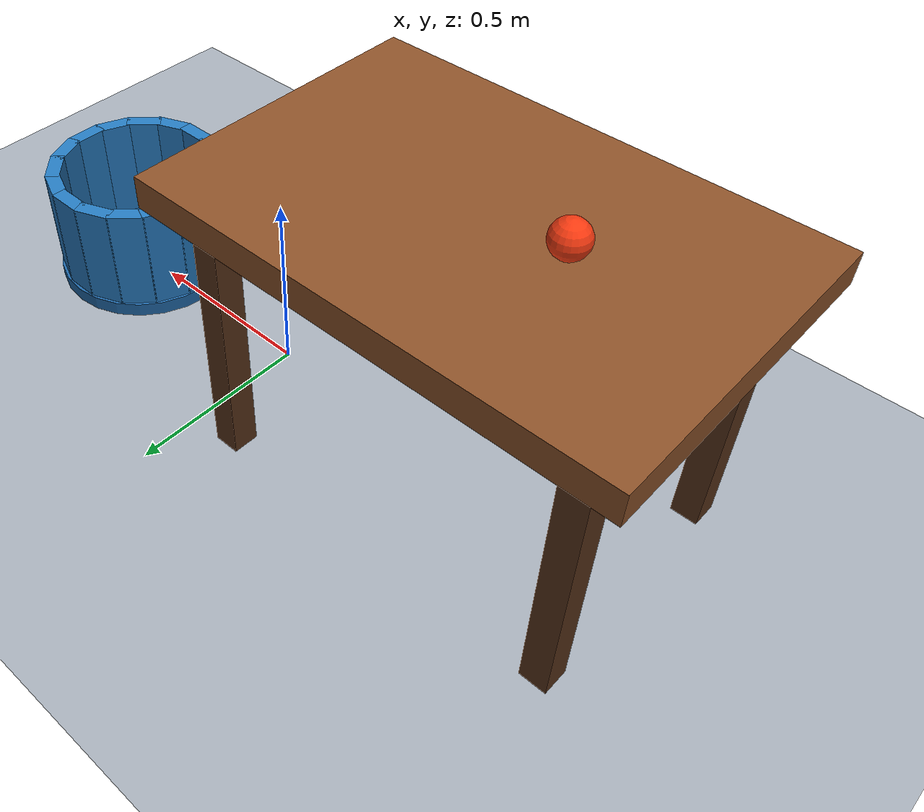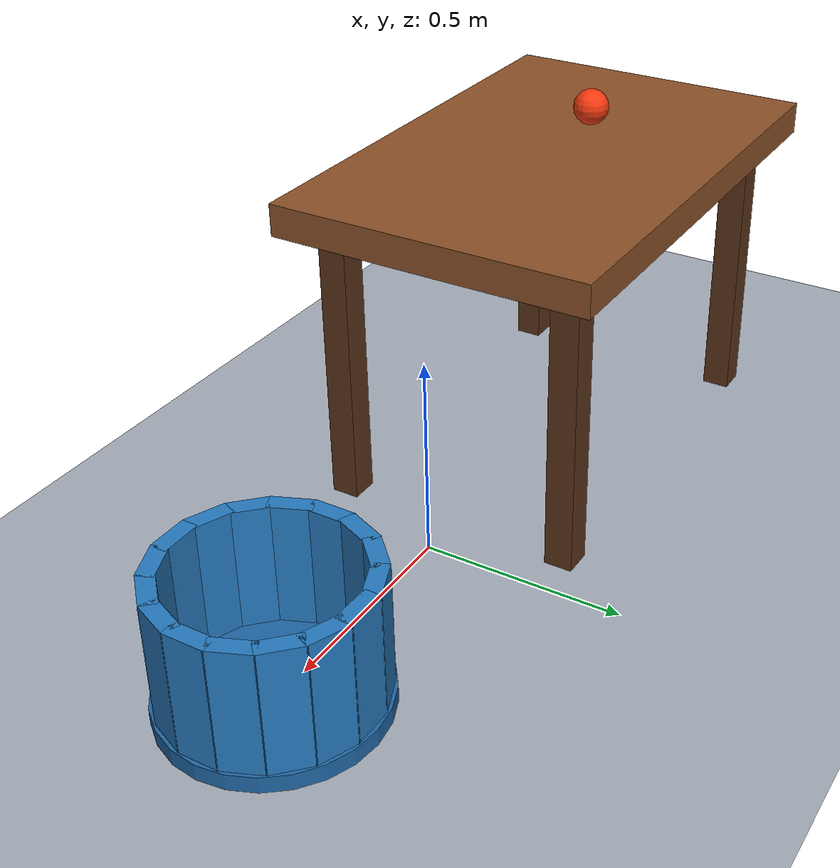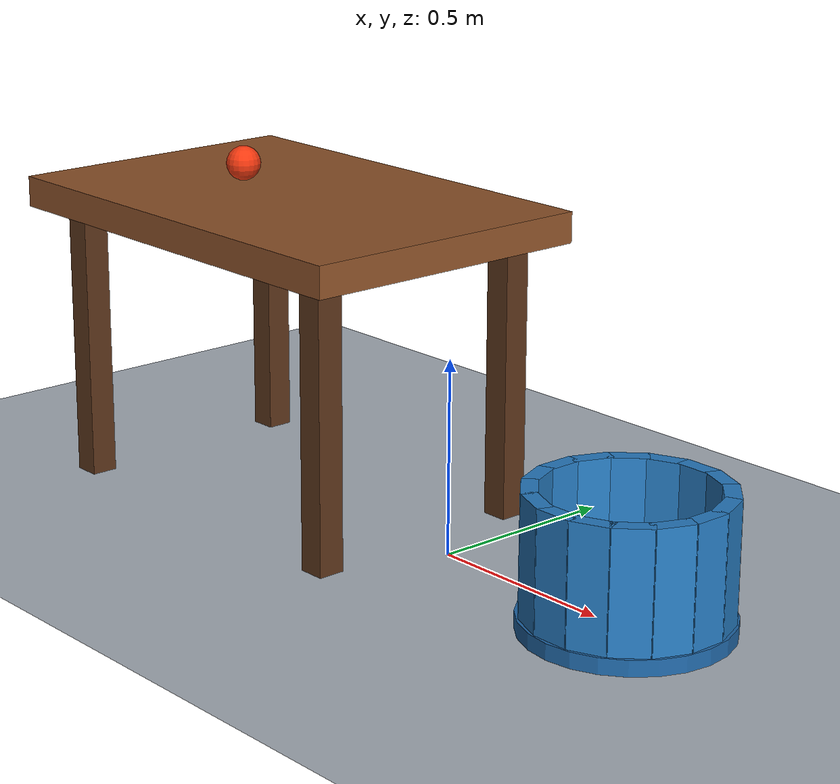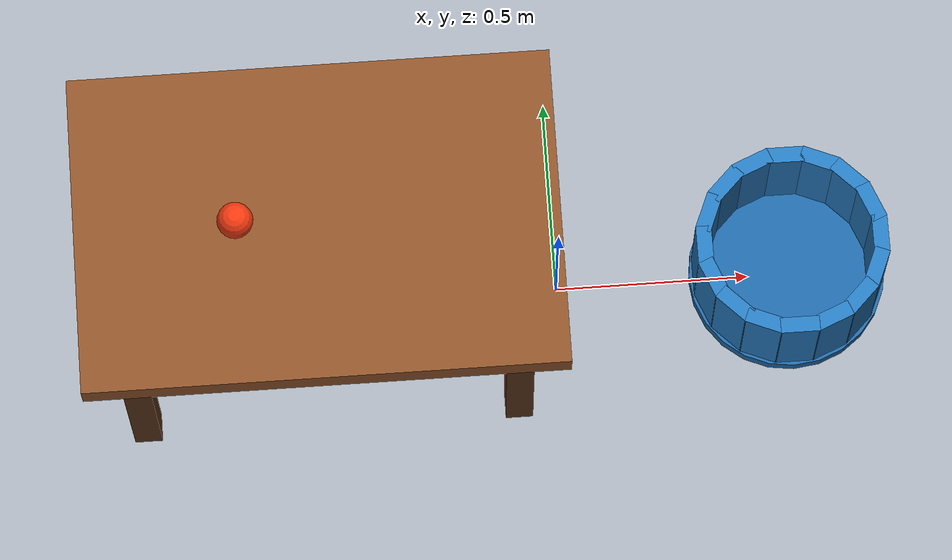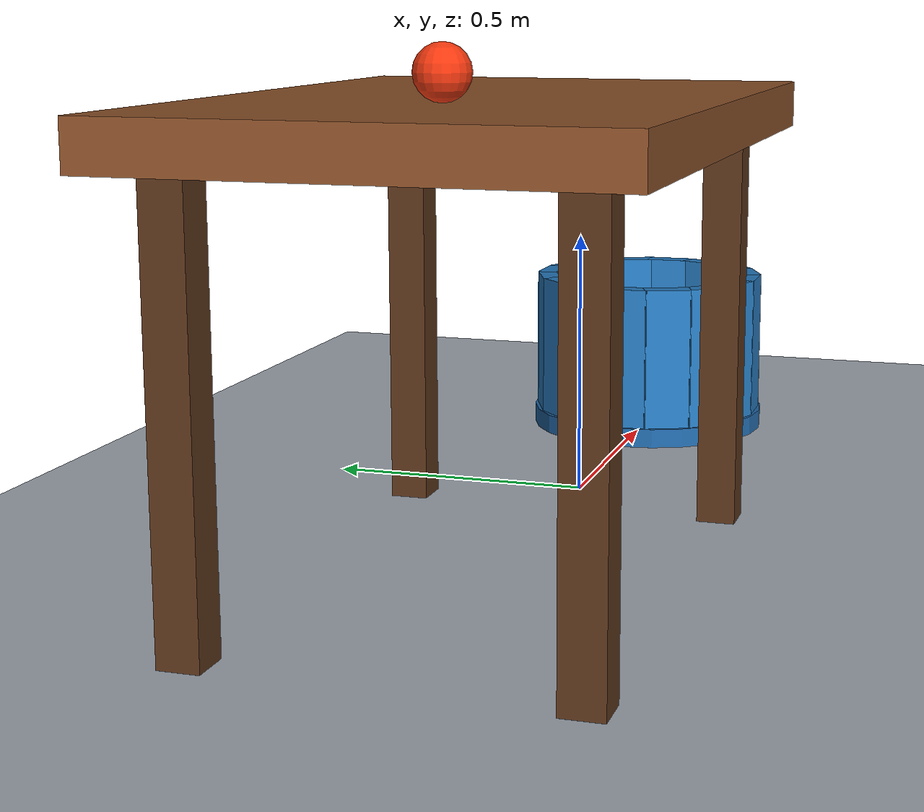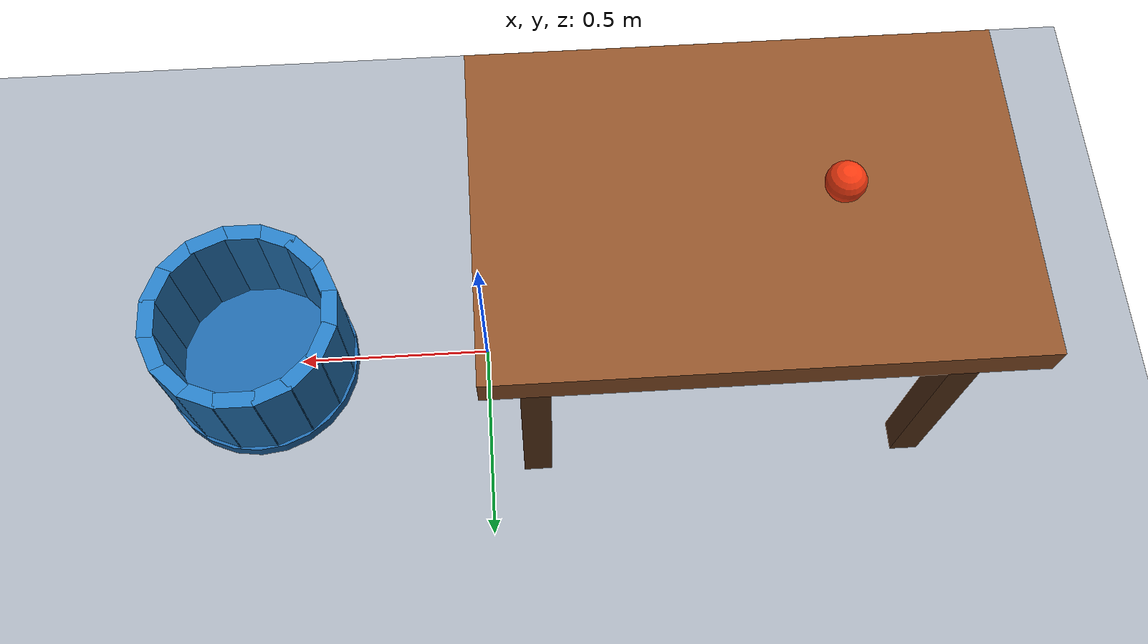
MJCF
<mujoco model="ball_table_bucket">
  <compiler angle="degree"/>
  <option timestep="0.002" gravity="0 0 -9.81" integrator="implicitfast" iterations="80"/>
  <statistic center="-0.2 0 0.45" extent="1.8"/>

  <visual>
    <global azimuth="135" elevation="-25"/>
  </visual>

  <worldbody>
    <light name="overhead" pos="0 -1 3" dir="0 0 -1" diffuse="0.9 0.9 0.9"/>
    <geom name="floor" type="plane" pos="0 0 0" size="3 3 0.1" rgba="0.65 0.68 0.72 1" friction="0.8 0.005 0.001"/>

    <body name="table" pos="0 0 0">
      <geom name="table_top" type="box" pos="-0.6 0 0.76" size="0.6 0.4 0.04" rgba="0.55 0.32 0.16 1" priority="1" condim="6" friction="0.8 0.005 0.00001" solref="0.01 1"/>
      <geom name="table_leg_1" type="box" pos="-1.08 -0.30 0.38" size="0.035 0.035 0.38" rgba="0.35 0.20 0.10 1"/>
      <geom name="table_leg_2" type="box" pos="-1.08 0.30 0.38" size="0.035 0.035 0.38" rgba="0.35 0.20 0.10 1"/>
      <geom name="table_leg_3" type="box" pos="-0.12 -0.30 0.38" size="0.035 0.035 0.38" rgba="0.35 0.20 0.10 1"/>
      <geom name="table_leg_4" type="box" pos="-0.12 0.30 0.38" size="0.035 0.035 0.38" rgba="0.35 0.20 0.10 1"/>
    </body>

    <body name="bucket" pos="0.60 0 0">
      <geom name="bucket_bottom" type="cylinder" pos="0 0 0.02" size="0.255 0.02" rgba="0.12 0.40 0.65 1" priority="2" condim="6" friction="1.0 0.01 0.015" solref="0.01 1"/>
      <geom name="bucket_wall_00" type="box" pos="0.225000 0 0.19" euler="0 0 0" size="0.02 0.05 0.15" rgba="0.15 0.48 0.75 1" priority="2" condim="6" friction="1.0 0.01 0.015" solref="0.01 1"/>
      <geom name="bucket_wall_01" type="box" pos="0.207873 0.086104 0.19" euler="0 0 22.5" size="0.02 0.05 0.15" rgba="0.15 0.48 0.75 1" priority="2" condim="6" friction="1.0 0.01 0.015" solref="0.01 1"/>
      <geom name="bucket_wall_02" type="box" pos="0.159099 0.159099 0.19" euler="0 0 45" size="0.02 0.05 0.15" rgba="0.15 0.48 0.75 1" priority="2" condim="6" friction="1.0 0.01 0.015" solref="0.01 1"/>
      <geom name="bucket_wall_03" type="box" pos="0.086104 0.207873 0.19" euler="0 0 67.5" size="0.02 0.05 0.15" rgba="0.15 0.48 0.75 1" priority="2" condim="6" friction="1.0 0.01 0.015" solref="0.01 1"/>
      <geom name="bucket_wall_04" type="box" pos="0 0.225000 0.19" euler="0 0 90" size="0.02 0.05 0.15" rgba="0.15 0.48 0.75 1" priority="2" condim="6" friction="1.0 0.01 0.015" solref="0.01 1"/>
      <geom name="bucket_wall_05" type="box" pos="-0.086104 0.207873 0.19" euler="0 0 112.5" size="0.02 0.05 0.15" rgba="0.15 0.48 0.75 1" priority="2" condim="6" friction="1.0 0.01 0.015" solref="0.01 1"/>
      <geom name="bucket_wall_06" type="box" pos="-0.159099 0.159099 0.19" euler="0 0 135" size="0.02 0.05 0.15" rgba="0.15 0.48 0.75 1" priority="2" condim="6" friction="1.0 0.01 0.015" solref="0.01 1"/>
      <geom name="bucket_wall_07" type="box" pos="-0.207873 0.086104 0.19" euler="0 0 157.5" size="0.02 0.05 0.15" rgba="0.15 0.48 0.75 1" priority="2" condim="6" friction="1.0 0.01 0.015" solref="0.01 1"/>
      <geom name="bucket_wall_08" type="box" pos="-0.225000 0 0.19" euler="0 0 180" size="0.02 0.05 0.15" rgba="0.15 0.48 0.75 1" priority="2" condim="6" friction="1.0 0.01 0.015" solref="0.01 1"/>
      <geom name="bucket_wall_09" type="box" pos="-0.207873 -0.086104 0.19" euler="0 0 202.5" size="0.02 0.05 0.15" rgba="0.15 0.48 0.75 1" priority="2" condim="6" friction="1.0 0.01 0.015" solref="0.01 1"/>
      <geom name="bucket_wall_10" type="box" pos="-0.159099 -0.159099 0.19" euler="0 0 225" size="0.02 0.05 0.15" rgba="0.15 0.48 0.75 1" priority="2" condim="6" friction="1.0 0.01 0.015" solref="0.01 1"/>
      <geom name="bucket_wall_11" type="box" pos="-0.086104 -0.207873 0.19" euler="0 0 247.5" size="0.02 0.05 0.15" rgba="0.15 0.48 0.75 1" priority="2" condim="6" friction="1.0 0.01 0.015" solref="0.01 1"/>
      <geom name="bucket_wall_12" type="box" pos="0 -0.225000 0.19" euler="0 0 270" size="0.02 0.05 0.15" rgba="0.15 0.48 0.75 1" priority="2" condim="6" friction="1.0 0.01 0.015" solref="0.01 1"/>
      <geom name="bucket_wall_13" type="box" pos="0.086104 -0.207873 0.19" euler="0 0 292.5" size="0.02 0.05 0.15" rgba="0.15 0.48 0.75 1" priority="2" condim="6" friction="1.0 0.01 0.015" solref="0.01 1"/>
      <geom name="bucket_wall_14" type="box" pos="0.159099 -0.159099 0.19" euler="0 0 315" size="0.02 0.05 0.15" rgba="0.15 0.48 0.75 1" priority="2" condim="6" friction="1.0 0.01 0.015" solref="0.01 1"/>
      <geom name="bucket_wall_15" type="box" pos="0.207873 -0.086104 0.19" euler="0 0 337.5" size="0.02 0.05 0.15" rgba="0.15 0.48 0.75 1" priority="2" condim="6" friction="1.0 0.01 0.015" solref="0.01 1"/>
    </body>

    <body name="ball" pos="-0.8 0 0.845">
      <freejoint name="ball_free"/>
      <geom name="ball" type="sphere" size="0.045" mass="0.12" rgba="0.95 0.22 0.06 1" condim="6" friction="0.8 0.005 0.0001" solref="0.01 1"/>
    </body>
  </worldbody>

  <keyframe>
    <key name="start" time="0" qpos="-0.8 0 0.845 1 0 0 0" qvel="1.5 0 0 0 33.3333333333 0"/>
  </keyframe>
</mujoco>
